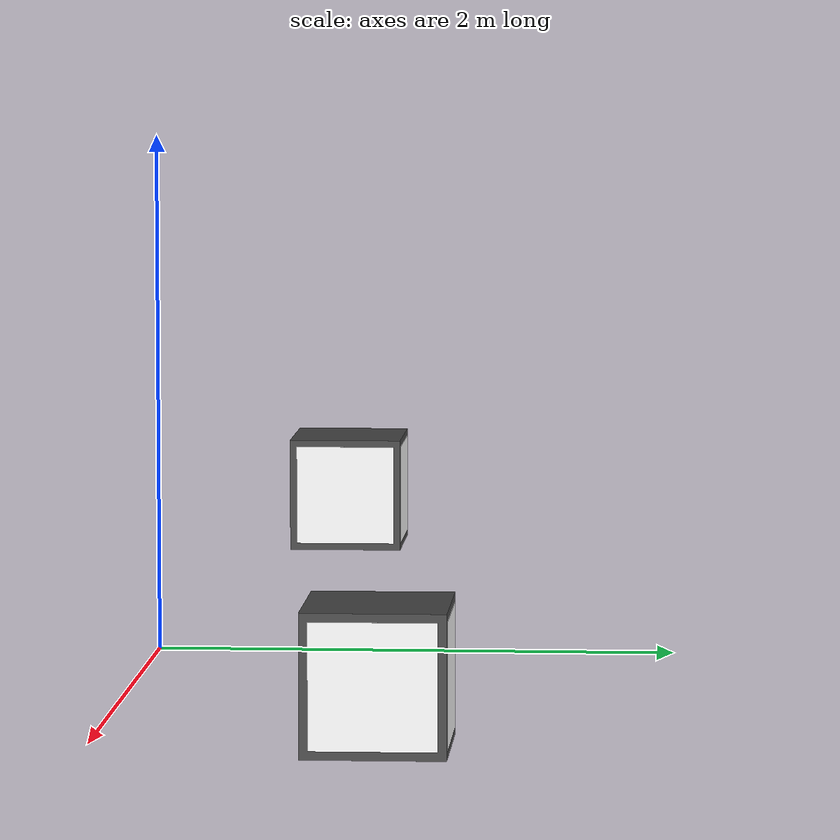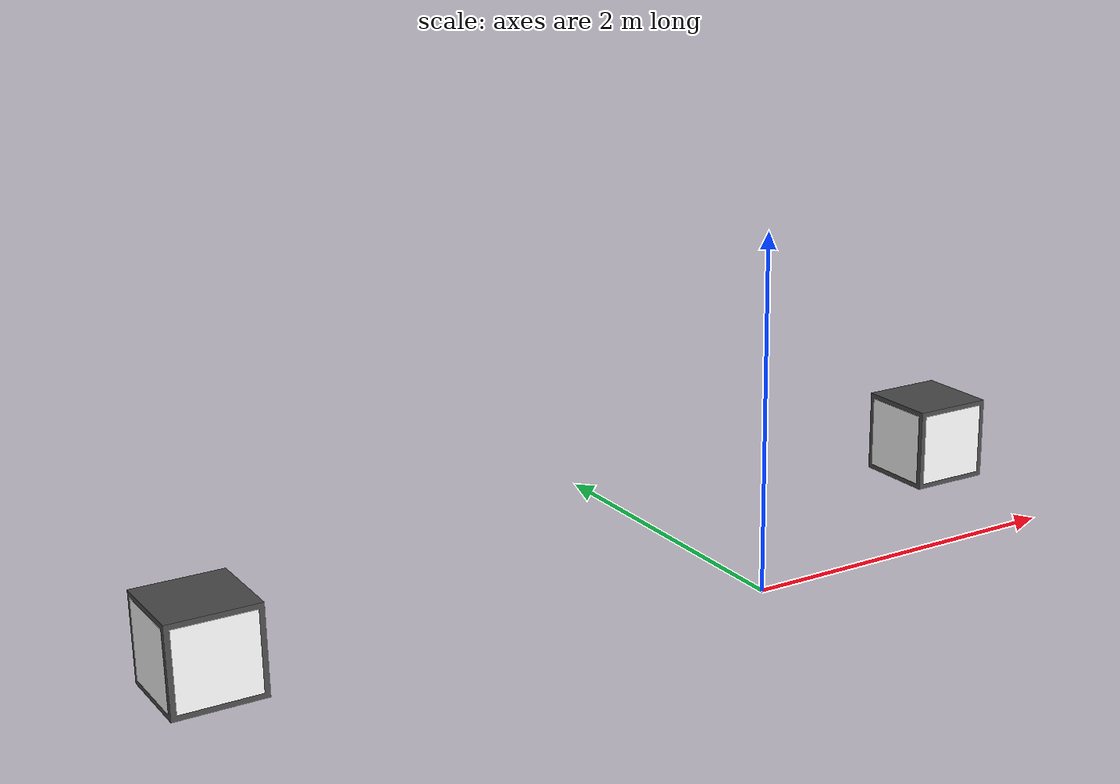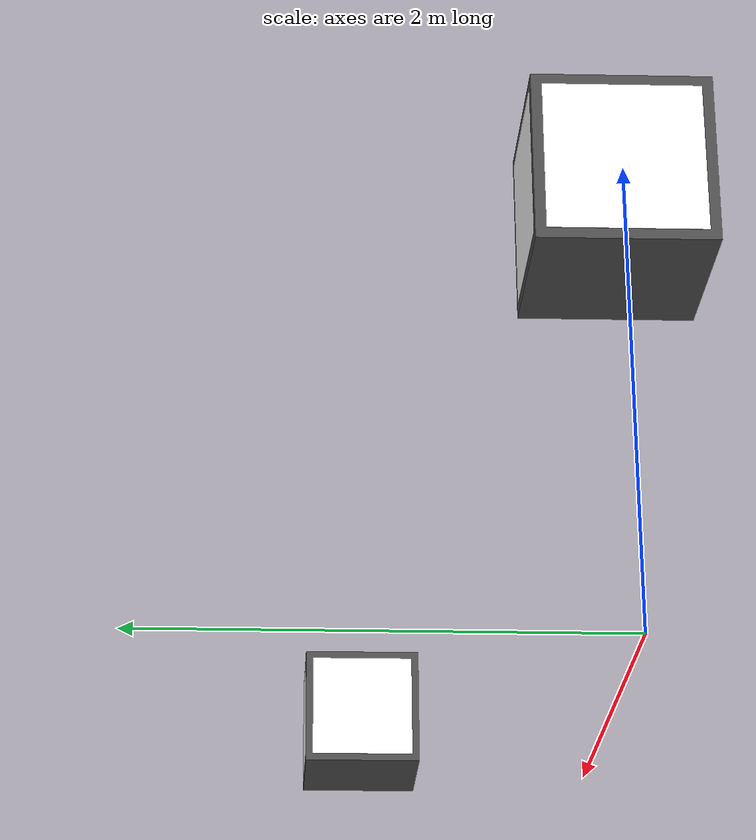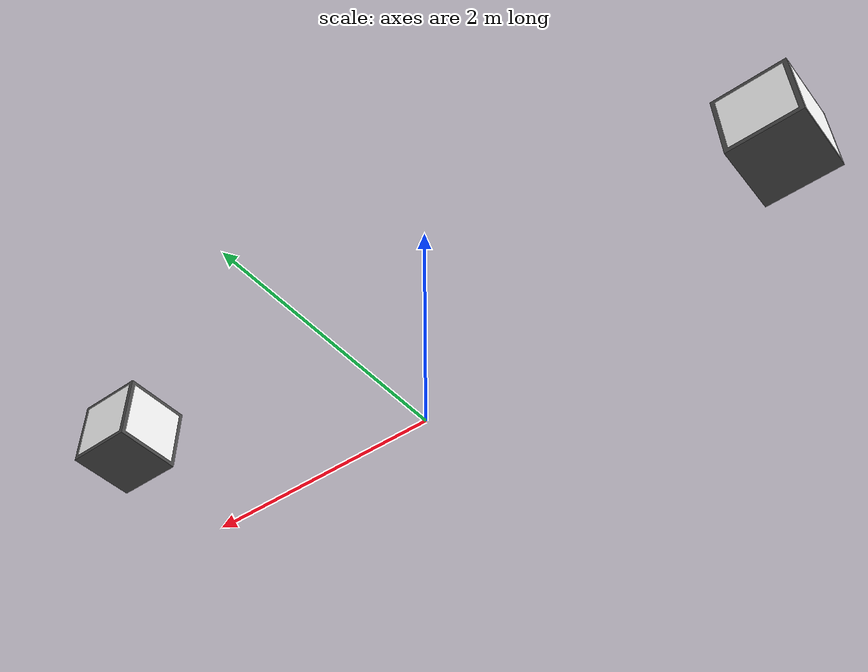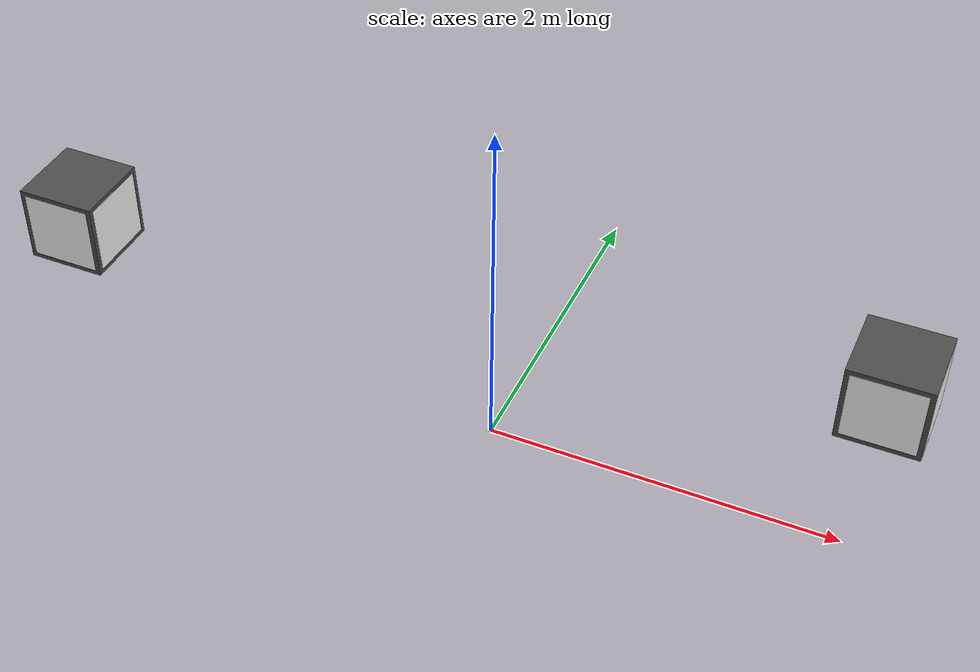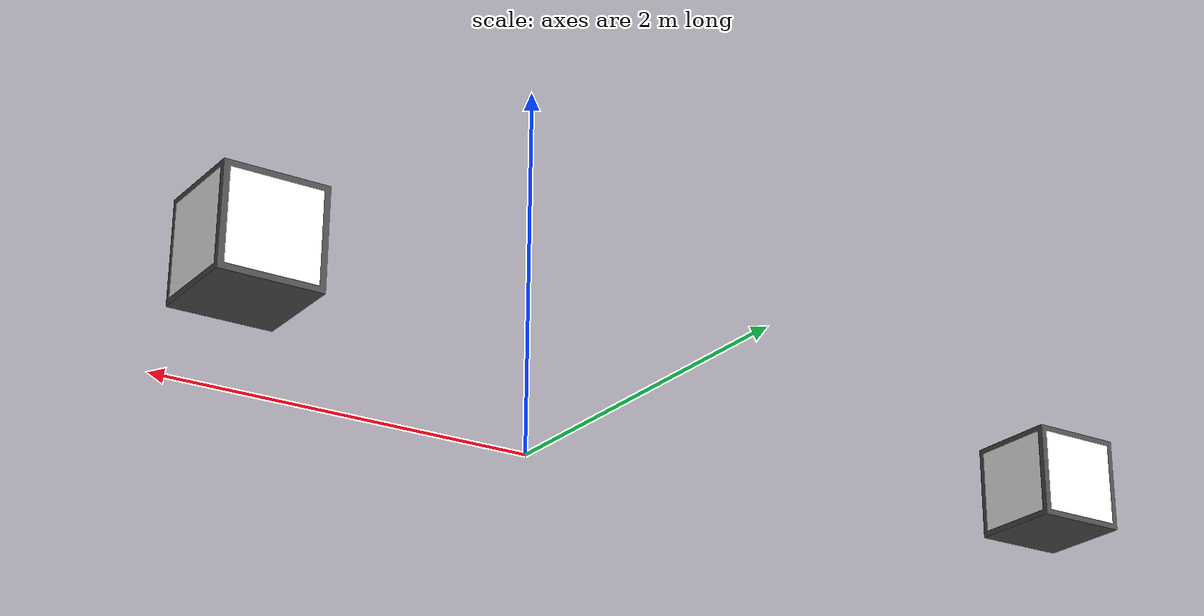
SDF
<?xml version="1.0" ?>
<sdf version="1.8">
  <model name="cubos">
    <static>true</static>

    <link name="cubo_b">
      <pose>2.0 1.0 0.25 0 0 3.1415</pose>

      <visual name="base_b">
        <geometry><box><size>0.5 0.5 0.5</size></box></geometry>
        <material>
          <ambient>0.3 0.3 0.3 1</ambient>
          <diffuse>0.3 0.3 0.3 1</diffuse>
        </material>
      </visual>

      <visual name="qr_b">
        <pose>0.251 0 0 0 0 1.5708</pose>
        <geometry><box><size>0.44 0.001 0.44</size></box></geometry>
        <material>
          <ambient>1 1 1 1</ambient>
          <diffuse>1 1 1 1</diffuse>
          <pbr>
            <metal><albedo_map>file:///home/dockeruser/ws/src/qrcode/b_qrcode.png</albedo_map></metal>
          </pbr>
        </material>
      </visual>

      <visual name="qr_b_2">
        <pose>-0.251 0 0 0 0 1.5708</pose>
        <geometry><box><size>0.44 0.001 0.44</size></box></geometry>
        <material>
          <ambient>1 1 1 1</ambient>
          <diffuse>1 1 1 1</diffuse>
          <pbr>
            <metal><albedo_map>file:///home/dockeruser/ws/src/qrcode/b_qrcode.png</albedo_map></metal>
          </pbr>
        </material>
      </visual>

      <visual name="qr_b_3">
        <pose>0 0.251 0 0 0 0</pose>
        <geometry><box><size>0.44 0.001 0.44</size></box></geometry>
        <material>
          <ambient>1 1 1 1</ambient>
          <diffuse>1 1 1 1</diffuse>
          <pbr>
            <metal><albedo_map>file:///home/dockeruser/ws/src/qrcode/b_qrcode.png</albedo_map></metal>
          </pbr>
        </material>
      </visual>

      <visual name="qr_b_4">
        <pose>0 -0.251 0 0 0 0</pose>
        <geometry><box><size>0.44 0.001 0.44</size></box></geometry>
        <material>
          <ambient>1 1 1 1</ambient>
          <diffuse>1 1 1 1</diffuse>
          <pbr>
            <metal><albedo_map>file:///home/dockeruser/ws/src/qrcode/b_qrcode.png</albedo_map></metal>
          </pbr>
        </material>
      </visual>

      <collision name="colisao_b">
        <geometry><box><size>0.5 0.5 0.5</size></box></geometry>
      </collision>
    </link>

    <link name="cubo_a">
      <pose>-3.0 0.5 0.25 0 0 0</pose>

      <visual name="base_a">
        <geometry><box><size>0.5 0.5 0.5</size></box></geometry>
        <material>
          <ambient>0.3 0.3 0.3 1</ambient>
          <diffuse>0.3 0.3 0.3 1</diffuse>
        </material>
      </visual>

      <visual name="qr_a">
        <pose>0.251 0 0 0 0 1.5708</pose>
        <geometry><box><size>0.44 0.001 0.44</size></box></geometry>
        <material>
          <ambient>1 1 1 1</ambient>
          <diffuse>1 1 1 1</diffuse>
          <pbr>
            <metal><albedo_map>file:///home/dockeruser/ws/src/qrcode/a_qrcode.png</albedo_map></metal>
          </pbr>
        </material>
      </visual>

      <visual name="qr_a_2">
        <pose>-0.251 0 0 0 0 1.5708</pose>
        <geometry><box><size>0.44 0.001 0.44</size></box></geometry>
        <material>
          <ambient>1 1 1 1</ambient>
          <diffuse>1 1 1 1</diffuse>
          <pbr>
            <metal><albedo_map>file:///home/dockeruser/ws/src/qrcode/a_qrcode.png</albedo_map></metal>
          </pbr>
        </material>
      </visual>

      <visual name="qr_a_3">
        <pose>0 0.251 0 0 0 0</pose>
        <geometry><box><size>0.44 0.001 0.44</size></box></geometry>
        <material>
          <ambient>1 1 1 1</ambient>
          <diffuse>1 1 1 1</diffuse>
          <pbr>
            <metal><albedo_map>file:///home/dockeruser/ws/src/qrcode/a_qrcode.png</albedo_map></metal>
          </pbr>
        </material>
      </visual>

      <visual name="qr_a_4">
        <pose>0 -0.251 0 0 0 0</pose>
        <geometry><box><size>0.44 0.001 0.44</size></box></geometry>
        <material>
          <ambient>1 1 1 1</ambient>
          <diffuse>1 1 1 1</diffuse>
          <pbr>
            <metal><albedo_map>file:///home/dockeruser/ws/src/qrcode/a_qrcode.png</albedo_map></metal>
          </pbr>
        </material>
      </visual>

      <collision name="colisao_a">
        <geometry><box><size>0.5 0.5 0.5</size></box></geometry>
      </collision>
    </link>
  </model>
</sdf>
